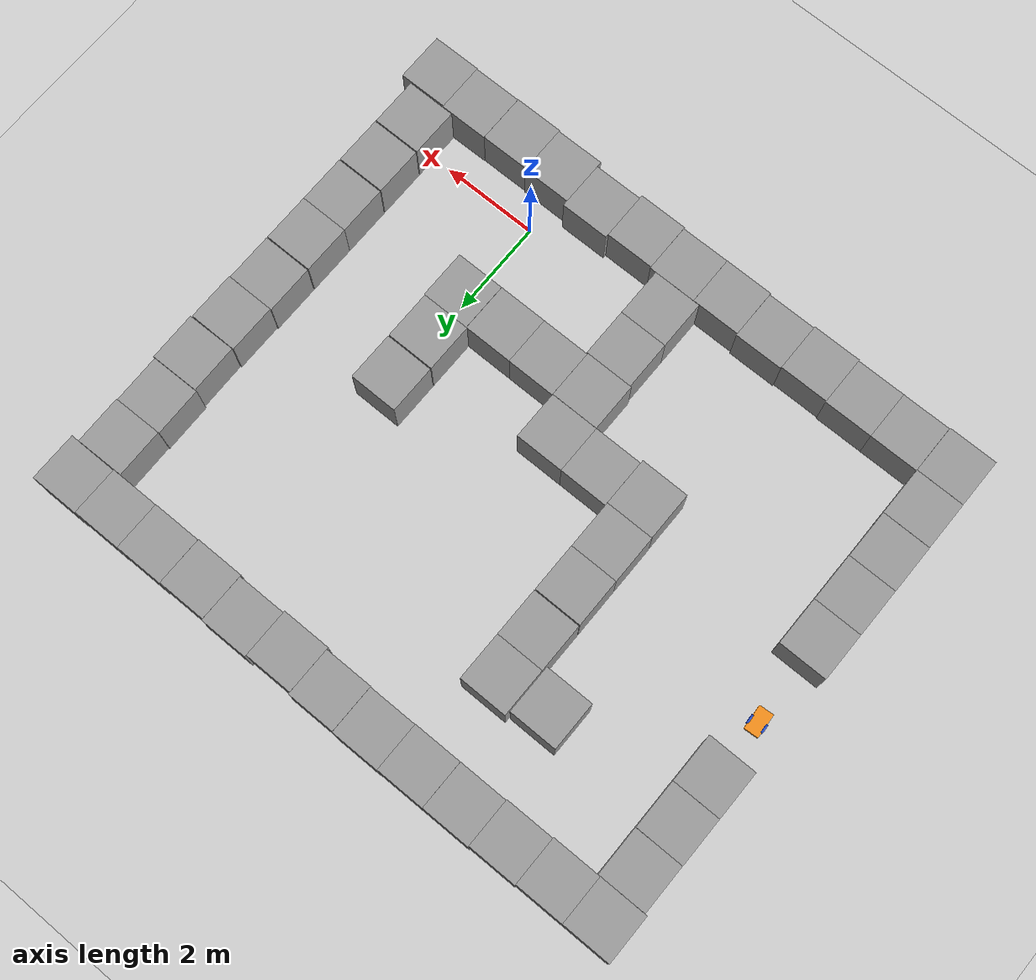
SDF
<sdf version="1.6">
 <world name="default">
  <light name="sun" type="directional">
   <pose>0 0 10 0 -0 0</pose>
   <diffuse>0.8 0.8 0.8 1</diffuse>
   <specular>0.2 0.2 0.2 1</specular>
   <attenuation>
    <range>1000</range>
    <constant>0.9</constant>
    <linear>0.01</linear>
    <quadratic>0.001</quadratic>
   </attenuation>
   <direction>-0.5 0.1 -0.9</direction>
  </light>
  <model name="ground_plane">
   <static>1</static>
   <link name="link">
    <collision name="collision">
     <geometry><plane><normal>0 0 1</normal><size>100 100</size></plane></geometry>
     <surface>
      <contact><collide_bitmask>65535</collide_bitmask></contact>
      <friction><ode><mu>100</mu><mu2>50</mu2></ode></friction>
     </surface>
    </collision>
    <visual name="visual">
     <cast_shadows>0</cast_shadows>
     <geometry><plane><normal>0 0 1</normal><size>100 100</size></plane></geometry>
     <material>
      <script><uri>file://media/materials/scripts/gazebo.material</uri><name>Gazebo/Grey</name></script>
     </material>
    </visual>
   </link>
  </model>
  <gravity>0 0 -9.8</gravity>
  <magnetic_field>6e-06 2.3e-05 -4.2e-05</magnetic_field>
  <atmosphere type="adiabatic"/>
  <physics name="default_physics" default="0" type="ode">
   <max_step_size>0.001</max_step_size>
   <real_time_factor>1</real_time_factor>
   <real_time_update_rate>1000</real_time_update_rate>
  </physics>
  <scene><ambient>0.4 0.4 0.4 1</ambient><background>0.7 0.7 0.7 1</background><shadows>1</shadows></scene>
  <audio><device>default</device></audio>
  <spherical_coordinates>
   <surface_model>EARTH_WGS84</surface_model>
   <latitude_deg>0</latitude_deg>
   <longitude_deg>0</longitude_deg>
   <elevation>0</elevation>
   <heading_deg>0</heading_deg>
  </spherical_coordinates>
  <model name="unit_box">
   <pose>1.10678 -1.08477 0.499995 0 -1e-05 0.004024</pose>
   <link name="link">
    <inertial>
     <mass>1</mass>
     <inertia>
      <ixx>0.166667</ixx>
      <ixy>0</ixy>
      <ixz>0</ixz>
      <iyy>0.166667</iyy>
      <iyz>0</iyz>
      <izz>0.166667</izz>
     </inertia>
    </inertial>
    <collision name="collision"><geometry><box><size>1 1 1</size></box></geometry></collision>
    <visual name="visual">
     <geometry><box><size>1 1 1</size></box></geometry>
     <material>
      <script><name>Gazebo/Grey</name><uri>file://media/materials/scripts/gazebo.material</uri></script>
     </material>
    </visual>
   </link>
  </model>
  <model name="unit_box_0">
   <pose>2.10785 -1.07184 0.499995 0 1e-05 0.004728</pose>
   <link name="link">
    <inertial>
     <mass>1</mass>
     <inertia>
      <ixx>0.166667</ixx>
      <ixy>0</ixy>
      <ixz>0</ixz>
      <iyy>0.166667</iyy>
      <iyz>0</iyz>
      <izz>0.166667</izz>
     </inertia>
    </inertial>
    <collision name="collision"><geometry><box><size>1 1 1</size></box></geometry></collision>
    <visual name="visual">
     <geometry><box><size>1 1 1</size></box></geometry>
     <material>
      <script><name>Gazebo/Grey</name><uri>file://media/materials/scripts/gazebo.material</uri></script>
     </material>
    </visual>
   </link>
  </model>
  <model name="unit_box_1">
   <pose>3.10792 -1.08272 0.499995 0 1e-05 0.004727</pose>
   <link name="link">
    <inertial>
     <mass>1</mass>
     <inertia>
      <ixx>0.166667</ixx>
      <ixy>0</ixy>
      <ixz>0</ixz>
      <iyy>0.166667</iyy>
      <iyz>0</iyz>
      <izz>0.166667</izz>
     </inertia>
    </inertial>
    <collision name="collision"><geometry><box><size>1 1 1</size></box></geometry></collision>
    <visual name="visual">
     <geometry><box><size>1 1 1</size></box></geometry>
     <material>
      <script><name>Gazebo/Grey</name><uri>file://media/materials/scripts/gazebo.material</uri></script>
     </material>
    </visual>
   </link>
  </model>
  <model name="unit_box_3">
   <pose>-8.89802 -1.03889 0.499995 -0 -1e-05 0.001321</pose>
   <link name="link">
    <inertial>
     <mass>1</mass>
     <inertia>
      <ixx>0.166667</ixx>
      <ixy>0</ixy>
      <ixz>0</ixz>
      <iyy>0.166667</iyy>
      <iyz>0</iyz>
      <izz>0.166667</izz>
     </inertia>
    </inertial>
    <collision name="collision"><geometry><box><size>1 1 1</size></box></geometry></collision>
    <visual name="visual">
     <geometry><box><size>1 1 1</size></box></geometry>
     <material>
      <script><name>Gazebo/Grey</name><uri>file://media/materials/scripts/gazebo.material</uri></script>
     </material>
    </visual>
   </link>
  </model>
  <model name="unit_box_2">
   <pose>-7.89581 -1.01548 0.499995 -0 -1e-05 0.00491</pose>
   <link name="link">
    <inertial>
     <mass>1</mass>
     <inertia>
      <ixx>0.166667</ixx>
      <ixy>0</ixy>
      <ixz>0</ixz>
      <iyy>0.166667</iyy>
      <iyz>0</iyz>
      <izz>0.166667</izz>
     </inertia>
    </inertial>
    <collision name="collision"><geometry><box><size>1 1 1</size></box></geometry></collision>
    <visual name="visual">
     <geometry><box><size>1 1 1</size></box></geometry>
     <material>
      <script><name>Gazebo/Grey</name><uri>file://media/materials/scripts/gazebo.material</uri></script>
     </material>
    </visual>
   </link>
  </model>
  <model name="unit_box_4">
   <pose>-6.89569 -1.01175 0.499995 0 -1e-05 0.005141</pose>
   <link name="link">
    <inertial>
     <mass>1</mass>
     <inertia>
      <ixx>0.166667</ixx>
      <ixy>0</ixy>
      <ixz>0</ixz>
      <iyy>0.166667</iyy>
      <iyz>0</iyz>
      <izz>0.166667</izz>
     </inertia>
    </inertial>
    <collision name="collision"><geometry><box><size>1 1 1</size></box></geometry></collision>
    <visual name="visual">
     <geometry><box><size>1 1 1</size></box></geometry>
     <material>
      <script><name>Gazebo/Grey</name><uri>file://media/materials/scripts/gazebo.material</uri></script>
     </material>
    </visual>
   </link>
  </model>
  <model name="unit_box_5">
   <pose>-5.89553 -1.02818 0.499995 0 -1e-05 0.005232</pose>
   <link name="link">
    <inertial>
     <mass>1</mass>
     <inertia>
      <ixx>0.166667</ixx>
      <ixy>0</ixy>
      <ixz>0</ixz>
      <iyy>0.166667</iyy>
      <iyz>0</iyz>
      <izz>0.166667</izz>
     </inertia>
    </inertial>
    <collision name="collision"><geometry><box><size>1 1 1</size></box></geometry></collision>
    <visual name="visual">
     <geometry><box><size>1 1 1</size></box></geometry>
     <material>
      <script><name>Gazebo/Grey</name><uri>file://media/materials/scripts/gazebo.material</uri></script>
     </material>
    </visual>
   </link>
  </model>
  <model name="unit_box_6">
   <pose>-4.89558 -0.996285 0.499995 0 1e-05 0.005085</pose>
   <link name="link">
    <inertial>
     <mass>1</mass>
     <inertia>
      <ixx>0.166667</ixx>
      <ixy>0</ixy>
      <ixz>0</ixz>
      <iyy>0.166667</iyy>
      <iyz>0</iyz>
      <izz>0.166667</izz>
     </inertia>
    </inertial>
    <collision name="collision"><geometry><box><size>1 1 1</size></box></geometry></collision>
    <visual name="visual">
     <geometry><box><size>1 1 1</size></box></geometry>
     <material>
      <script><name>Gazebo/Grey</name><uri>file://media/materials/scripts/gazebo.material</uri></script>
     </material>
    </visual>
   </link>
  </model>
  <model name="unit_box_7">
   <pose>-3.89474 -1.02445 0.499995 0 1e-05 0.003658</pose>
   <link name="link">
    <inertial>
     <mass>1</mass>
     <inertia>
      <ixx>0.166667</ixx>
      <ixy>0</ixy>
      <ixz>0</ixz>
      <iyy>0.166667</iyy>
      <iyz>0</iyz>
      <izz>0.166667</izz>
     </inertia>
    </inertial>
    <collision name="collision"><geometry><box><size>1 1 1</size></box></geometry></collision>
    <visual name="visual">
     <geometry><box><size>1 1 1</size></box></geometry>
     <material>
      <script><name>Gazebo/Grey</name><uri>file://media/materials/scripts/gazebo.material</uri></script>
     </material>
    </visual>
   </link>
  </model>
  <model name="unit_box_8">
   <pose>-2.89445 -1.01761 0.499995 0 -1e-05 0.003064</pose>
   <link name="link">
    <inertial>
     <mass>1</mass>
     <inertia>
      <ixx>0.166667</ixx>
      <ixy>0</ixy>
      <ixz>0</ixz>
      <iyy>0.166667</iyy>
      <iyz>0</iyz>
      <izz>0.166667</izz>
     </inertia>
    </inertial>
    <collision name="collision"><geometry><box><size>1 1 1</size></box></geometry></collision>
    <visual name="visual">
     <geometry><box><size>1 1 1</size></box></geometry>
     <material>
      <script><name>Gazebo/Grey</name><uri>file://media/materials/scripts/gazebo.material</uri></script>
     </material>
    </visual>
   </link>
  </model>
  <model name="unit_box_9">
   <pose>-1.89368 -1.03877 0.499995 1e-05 -0 0.004444</pose>
   <link name="link">
    <inertial>
     <mass>1</mass>
     <inertia>
      <ixx>0.166667</ixx>
      <ixy>0</ixy>
      <ixz>0</ixz>
      <iyy>0.166667</iyy>
      <iyz>0</iyz>
      <izz>0.166667</izz>
     </inertia>
    </inertial>
    <collision name="collision"><geometry><box><size>1 1 1</size></box></geometry></collision>
    <visual name="visual">
     <geometry><box><size>1 1 1</size></box></geometry>
     <material>
      <script><name>Gazebo/Grey</name><uri>file://media/materials/scripts/gazebo.material</uri></script>
     </material>
    </visual>
   </link>
  </model>
  <model name="unit_box_10">
   <pose>-0.893973 -0.968694 0.499995 -1e-05 -0 0.004441</pose>
   <link name="link">
    <inertial>
     <mass>1</mass>
     <inertia>
      <ixx>0.166667</ixx>
      <ixy>0</ixy>
      <ixz>0</ixz>
      <iyy>0.166667</iyy>
      <iyz>0</iyz>
      <izz>0.166667</izz>
     </inertia>
    </inertial>
    <collision name="collision"><geometry><box><size>1 1 1</size></box></geometry></collision>
    <visual name="visual">
     <geometry><box><size>1 1 1</size></box></geometry>
     <material>
      <script><name>Gazebo/Grey</name><uri>file://media/materials/scripts/gazebo.material</uri></script>
     </material>
    </visual>
   </link>
  </model>
  <model name="unit_box_11">
   <pose>0.106488 -1.06878 0.499995 -1e-05 0 0.004438</pose>
   <link name="link">
    <inertial>
     <mass>1</mass>
     <inertia>
      <ixx>0.166667</ixx>
      <ixy>0</ixy>
      <ixz>0</ixz>
      <iyy>0.166667</iyy>
      <iyz>0</iyz>
      <izz>0.166667</izz>
     </inertia>
    </inertial>
    <collision name="collision"><geometry><box><size>1 1 1</size></box></geometry></collision>
    <visual name="visual">
     <geometry><box><size>1 1 1</size></box></geometry>
     <material>
      <script><name>Gazebo/Grey</name><uri>file://media/materials/scripts/gazebo.material</uri></script>
     </material>
    </visual>
   </link>
  </model>
  <model name="unit_box_12">
   <pose>-8.90138 -0.038357 0.499995 0 1e-05 0.000629</pose>
   <link name="link">
    <inertial>
     <mass>1</mass>
     <inertia>
      <ixx>0.166667</ixx>
      <ixy>0</ixy>
      <ixz>0</ixz>
      <iyy>0.166667</iyy>
      <iyz>0</iyz>
      <izz>0.166667</izz>
     </inertia>
    </inertial>
    <collision name="collision"><geometry><box><size>1 1 1</size></box></geometry></collision>
    <visual name="visual">
     <geometry><box><size>1 1 1</size></box></geometry>
     <material>
      <script><name>Gazebo/Grey</name><uri>file://media/materials/scripts/gazebo.material</uri></script>
     </material>
    </visual>
   </link>
  </model>
  <model name="unit_box_13">
   <pose>-3.0327 -0.016828 0.499995 -0 1e-05 0.00068</pose>
   <link name="link">
    <inertial>
     <mass>1</mass>
     <inertia>
      <ixx>0.166667</ixx>
      <ixy>0</ixy>
      <ixz>0</ixz>
      <iyy>0.166667</iyy>
      <iyz>0</iyz>
      <izz>0.166667</izz>
     </inertia>
    </inertial>
    <collision name="collision"><geometry><box><size>1 1 1</size></box></geometry></collision>
    <visual name="visual">
     <geometry><box><size>1 1 1</size></box></geometry>
     <material>
      <script><name>Gazebo/Grey</name><uri>file://media/materials/scripts/gazebo.material</uri></script>
     </material>
    </visual>
   </link>
  </model>
  <model name="unit_box_14">
   <pose>-3.03345 0.983181 0.499995 0 -1e-05 0.00068</pose>
   <link name="link">
    <inertial>
     <mass>1</mass>
     <inertia>
      <ixx>0.166667</ixx>
      <ixy>0</ixy>
      <ixz>0</ixz>
      <iyy>0.166667</iyy>
      <iyz>0</iyz>
      <izz>0.166667</izz>
     </inertia>
    </inertial>
    <collision name="collision"><geometry><box><size>1 1 1</size></box></geometry></collision>
    <visual name="visual">
     <geometry><box><size>1 1 1</size></box></geometry>
     <material>
      <script><name>Gazebo/Grey</name><uri>file://media/materials/scripts/gazebo.material</uri></script>
     </material>
    </visual>
   </link>
  </model>
  <model name="unit_box_15">
   <pose>-3.06105 1.98323 0.499995 -1e-05 -0 0.000619</pose>
   <link name="link">
    <inertial>
     <mass>1</mass>
     <inertia>
      <ixx>0.166667</ixx>
      <ixy>0</ixy>
      <ixz>0</ixz>
      <iyy>0.166667</iyy>
      <iyz>0</iyz>
      <izz>0.166667</izz>
     </inertia>
    </inertial>
    <collision name="collision"><geometry><box><size>1 1 1</size></box></geometry></collision>
    <visual name="visual">
     <geometry><box><size>1 1 1</size></box></geometry>
     <material>
      <script><name>Gazebo/Grey</name><uri>file://media/materials/scripts/gazebo.material</uri></script>
     </material>
    </visual>
   </link>
  </model>
  <model name="unit_box_16">
   <pose>-3.06608 2.98454 0.499995 -0 1e-05 0.001357</pose>
   <link name="link">
    <inertial>
     <mass>1</mass>
     <inertia>
      <ixx>0.166667</ixx>
      <ixy>0</ixy>
      <ixz>0</ixz>
      <iyy>0.166667</iyy>
      <iyz>0</iyz>
      <izz>0.166667</izz>
     </inertia>
    </inertial>
    <collision name="collision"><geometry><box><size>1 1 1</size></box></geometry></collision>
    <visual name="visual">
     <geometry><box><size>1 1 1</size></box></geometry>
     <material>
      <script><name>Gazebo/Grey</name><uri>file://media/materials/scripts/gazebo.material</uri></script>
     </material>
    </visual>
   </link>
  </model>
  <model name="unit_box_17">
   <pose>-4.0661 2.98144 0.499995 -0 -1e-05 0.00135</pose>
   <link name="link">
    <inertial>
     <mass>1</mass>
     <inertia>
      <ixx>0.166667</ixx>
      <ixy>0</ixy>
      <ixz>0</ixz>
      <iyy>0.166667</iyy>
      <iyz>0</iyz>
      <izz>0.166667</izz>
     </inertia>
    </inertial>
    <collision name="collision"><geometry><box><size>1 1 1</size></box></geometry></collision>
    <visual name="visual">
     <geometry><box><size>1 1 1</size></box></geometry>
     <material>
      <script><name>Gazebo/Grey</name><uri>file://media/materials/scripts/gazebo.material</uri></script>
     </material>
    </visual>
   </link>
  </model>
  <model name="unit_box_18">
   <pose>-5.06625 2.91682 0.499995 0 1e-05 0.000856</pose>
   <link name="link">
    <inertial>
     <mass>1</mass>
     <inertia>
      <ixx>0.166667</ixx>
      <ixy>0</ixy>
      <ixz>0</ixz>
      <iyy>0.166667</iyy>
      <iyz>0</iyz>
      <izz>0.166667</izz>
     </inertia>
    </inertial>
    <collision name="collision"><geometry><box><size>1 1 1</size></box></geometry></collision>
    <visual name="visual">
     <geometry><box><size>1 1 1</size></box></geometry>
     <material>
      <script><name>Gazebo/Grey</name><uri>file://media/materials/scripts/gazebo.material</uri></script>
     </material>
    </visual>
   </link>
  </model>
  <model name="unit_box_19">
   <pose>-5.07228 3.91687 0.499995 -0 -1e-05 0.000751</pose>
   <link name="link">
    <inertial>
     <mass>1</mass>
     <inertia>
      <ixx>0.166667</ixx>
      <ixy>0</ixy>
      <ixz>0</ixz>
      <iyy>0.166667</iyy>
      <iyz>0</iyz>
      <izz>0.166667</izz>
     </inertia>
    </inertial>
    <collision name="collision"><geometry><box><size>1 1 1</size></box></geometry></collision>
    <visual name="visual">
     <geometry><box><size>1 1 1</size></box></geometry>
     <material>
      <script><name>Gazebo/Grey</name><uri>file://media/materials/scripts/gazebo.material</uri></script>
     </material>
    </visual>
   </link>
  </model>
  <model name="unit_box_20">
   <pose>-5.07205 4.91687 0.5 0 -0 0.000749</pose>
   <link name="link">
    <inertial>
     <mass>1</mass>
     <inertia>
      <ixx>0.166667</ixx>
      <ixy>0</ixy>
      <ixz>0</ixz>
      <iyy>0.166667</iyy>
      <iyz>0</iyz>
      <izz>0.166667</izz>
     </inertia>
    </inertial>
    <collision name="collision"><geometry><box><size>1 1 1</size></box></geometry></collision>
    <visual name="visual">
     <geometry><box><size>1 1 1</size></box></geometry>
     <material>
      <script><name>Gazebo/Grey</name><uri>file://media/materials/scripts/gazebo.material</uri></script>
     </material>
    </visual>
   </link>
  </model>
  <model name="unit_box_21">
   <pose>-5.07207 5.93515 0.499995 0 1e-05 -1.3e-05</pose>
   <link name="link">
    <inertial>
     <mass>1</mass>
     <inertia>
      <ixx>0.166667</ixx>
      <ixy>0</ixy>
      <ixz>0</ixz>
      <iyy>0.166667</iyy>
      <iyz>0</iyz>
      <izz>0.166667</izz>
     </inertia>
    </inertial>
    <collision name="collision"><geometry><box><size>1 1 1</size></box></geometry></collision>
    <visual name="visual">
     <geometry><box><size>1 1 1</size></box></geometry>
     <material>
      <script><name>Gazebo/Grey</name><uri>file://media/materials/scripts/gazebo.material</uri></script>
     </material>
    </visual>
   </link>
  </model>
  <model name="unit_box_22">
   <pose>-5.07205 6.93517 0.499995 0 1e-05 -1.3e-05</pose>
   <link name="link">
    <inertial>
     <mass>1</mass>
     <inertia>
      <ixx>0.166667</ixx>
      <ixy>0</ixy>
      <ixz>0</ixz>
      <iyy>0.166667</iyy>
      <iyz>0</iyz>
      <izz>0.166667</izz>
     </inertia>
    </inertial>
    <collision name="collision"><geometry><box><size>1 1 1</size></box></geometry></collision>
    <visual name="visual">
     <geometry><box><size>1 1 1</size></box></geometry>
     <material>
      <script><name>Gazebo/Grey</name><uri>file://media/materials/scripts/gazebo.material</uri></script>
     </material>
    </visual>
   </link>
  </model>
  <model name="unit_box_23">
   <pose>-6.09176 6.83056 0.499995 -1e-05 -0 5e-06</pose>
   <link name="link">
    <inertial>
     <mass>1</mass>
     <inertia>
      <ixx>0.166667</ixx>
      <ixy>0</ixy>
      <ixz>0</ixz>
      <iyy>0.166667</iyy>
      <iyz>0</iyz>
      <izz>0.166667</izz>
     </inertia>
    </inertial>
    <collision name="collision"><geometry><box><size>1 1 1</size></box></geometry></collision>
    <visual name="visual">
     <geometry><box><size>1 1 1</size></box></geometry>
     <material>
      <script><name>Gazebo/Grey</name><uri>file://media/materials/scripts/gazebo.material</uri></script>
     </material>
    </visual>
   </link>
  </model>
  <model name="unit_box_24">
   <pose>-8.90415 0.961786 0.499995 0 1e-05 0.000471</pose>
   <link name="link">
    <inertial>
     <mass>1</mass>
     <inertia>
      <ixx>0.166667</ixx>
      <ixy>0</ixy>
      <ixz>0</ixz>
      <iyy>0.166667</iyy>
      <iyz>0</iyz>
      <izz>0.166667</izz>
     </inertia>
    </inertial>
    <collision name="collision"><geometry><box><size>1 1 1</size></box></geometry></collision>
    <visual name="visual">
     <geometry><box><size>1 1 1</size></box></geometry>
     <material>
      <script><name>Gazebo/Grey</name><uri>file://media/materials/scripts/gazebo.material</uri></script>
     </material>
    </visual>
   </link>
  </model>
  <model name="unit_box_25">
   <pose>-8.90245 1.96185 0.499995 0 1e-05 0.000464</pose>
   <link name="link">
    <inertial>
     <mass>1</mass>
     <inertia>
      <ixx>0.166667</ixx>
      <ixy>0</ixy>
      <ixz>0</ixz>
      <iyy>0.166667</iyy>
      <iyz>0</iyz>
      <izz>0.166667</izz>
     </inertia>
    </inertial>
    <collision name="collision"><geometry><box><size>1 1 1</size></box></geometry></collision>
    <visual name="visual">
     <geometry><box><size>1 1 1</size></box></geometry>
     <material>
      <script><name>Gazebo/Grey</name><uri>file://media/materials/scripts/gazebo.material</uri></script>
     </material>
    </visual>
   </link>
  </model>
  <model name="unit_box_26">
   <pose>-8.90071 2.96189 0.499995 0 1e-05 0.000391</pose>
   <link name="link">
    <inertial>
     <mass>1</mass>
     <inertia>
      <ixx>0.166667</ixx>
      <ixy>0</ixy>
      <ixz>0</ixz>
      <iyy>0.166667</iyy>
      <iyz>0</iyz>
      <izz>0.166667</izz>
     </inertia>
    </inertial>
    <collision name="collision"><geometry><box><size>1 1 1</size></box></geometry></collision>
    <visual name="visual">
     <geometry><box><size>1 1 1</size></box></geometry>
     <material>
      <script><name>Gazebo/Grey</name><uri>file://media/materials/scripts/gazebo.material</uri></script>
     </material>
    </visual>
   </link>
  </model>
  <model name="unit_box_28">
   <pose>-8.94721 5.9694 0.499995 -1e-05 -0 3.6e-05</pose>
   <link name="link">
    <inertial>
     <mass>1</mass>
     <inertia>
      <ixx>0.166667</ixx>
      <ixy>0</ixy>
      <ixz>0</ixz>
      <iyy>0.166667</iyy>
      <iyz>0</iyz>
      <izz>0.166667</izz>
     </inertia>
    </inertial>
    <collision name="collision"><geometry><box><size>1 1 1</size></box></geometry></collision>
    <visual name="visual">
     <geometry><box><size>1 1 1</size></box></geometry>
     <material>
      <script><name>Gazebo/Grey</name><uri>file://media/materials/scripts/gazebo.material</uri></script>
     </material>
    </visual>
   </link>
  </model>
  <model name="unit_box_29">
   <pose>-8.94594 6.96968 0.5 0 -0 0.000603</pose>
   <link name="link">
    <inertial>
     <mass>1</mass>
     <inertia>
      <ixx>0.166667</ixx>
      <ixy>0</ixy>
      <ixz>0</ixz>
      <iyy>0.166667</iyy>
      <iyz>0</iyz>
      <izz>0.166667</izz>
     </inertia>
    </inertial>
    <collision name="collision"><geometry><box><size>1 1 1</size></box></geometry></collision>
    <visual name="visual">
     <geometry><box><size>1 1 1</size></box></geometry>
     <material>
      <script><name>Gazebo/Grey</name><uri>file://media/materials/scripts/gazebo.material</uri></script>
     </material>
    </visual>
   </link>
  </model>
  <model name="unit_box_30">
   <pose>-8.94361 7.97004 0.499995 0 1e-05 0.001294</pose>
   <link name="link">
    <inertial>
     <mass>1</mass>
     <inertia>
      <ixx>0.166667</ixx>
      <ixy>0</ixy>
      <ixz>0</ixz>
      <iyy>0.166667</iyy>
      <iyz>0</iyz>
      <izz>0.166667</izz>
     </inertia>
    </inertial>
    <collision name="collision"><geometry><box><size>1 1 1</size></box></geometry></collision>
    <visual name="visual">
     <geometry><box><size>1 1 1</size></box></geometry>
     <material>
      <script><name>Gazebo/Grey</name><uri>file://media/materials/scripts/gazebo.material</uri></script>
     </material>
    </visual>
   </link>
  </model>
  <model name="unit_box_31">
   <pose>-8.99385 8.97042 0.499995 0 1e-05 0.000601</pose>
   <link name="link">
    <inertial>
     <mass>1</mass>
     <inertia>
      <ixx>0.166667</ixx>
      <ixy>0</ixy>
      <ixz>0</ixz>
      <iyy>0.166667</iyy>
      <iyz>0</iyz>
      <izz>0.166667</izz>
     </inertia>
    </inertial>
    <collision name="collision"><geometry><box><size>1 1 1</size></box></geometry></collision>
    <visual name="visual">
     <geometry><box><size>1 1 1</size></box></geometry>
     <material>
      <script><name>Gazebo/Grey</name><uri>file://media/materials/scripts/gazebo.material</uri></script>
     </material>
    </visual>
   </link>
  </model>
  <model name="unit_box_32">
   <pose>-7.99386 8.97362 0.499995 0 -1e-05 0.000602</pose>
   <link name="link">
    <inertial>
     <mass>1</mass>
     <inertia>
      <ixx>0.166667</ixx>
      <ixy>0</ixy>
      <ixz>0</ixz>
      <iyy>0.166667</iyy>
      <iyz>0</iyz>
      <izz>0.166667</izz>
     </inertia>
    </inertial>
    <collision name="collision"><geometry><box><size>1 1 1</size></box></geometry></collision>
    <visual name="visual">
     <geometry><box><size>1 1 1</size></box></geometry>
     <material>
      <script><name>Gazebo/Grey</name><uri>file://media/materials/scripts/gazebo.material</uri></script>
     </material>
    </visual>
   </link>
  </model>
  <model name="unit_box_33">
   <pose>-6.99386 8.99262 0.499995 -1e-05 0 0.000624</pose>
   <link name="link">
    <inertial>
     <mass>1</mass>
     <inertia>
      <ixx>0.166667</ixx>
      <ixy>0</ixy>
      <ixz>0</ixz>
      <iyy>0.166667</iyy>
      <iyz>0</iyz>
      <izz>0.166667</izz>
     </inertia>
    </inertial>
    <collision name="collision"><geometry><box><size>1 1 1</size></box></geometry></collision>
    <visual name="visual">
     <geometry><box><size>1 1 1</size></box></geometry>
     <material>
      <script><name>Gazebo/Grey</name><uri>file://media/materials/scripts/gazebo.material</uri></script>
     </material>
    </visual>
   </link>
  </model>
  <model name="unit_box_34">
   <pose>-5.99386 9.01181 0.499995 -1e-05 -0 0.000632</pose>
   <link name="link">
    <inertial>
     <mass>1</mass>
     <inertia>
      <ixx>0.166667</ixx>
      <ixy>0</ixy>
      <ixz>0</ixz>
      <iyy>0.166667</iyy>
      <iyz>0</iyz>
      <izz>0.166667</izz>
     </inertia>
    </inertial>
    <collision name="collision"><geometry><box><size>1 1 1</size></box></geometry></collision>
    <visual name="visual">
     <geometry><box><size>1 1 1</size></box></geometry>
     <material>
      <script><name>Gazebo/Grey</name><uri>file://media/materials/scripts/gazebo.material</uri></script>
     </material>
    </visual>
   </link>
  </model>
  <model name="unit_box_35">
   <pose>-4.99319 9.01456 0.499995 0 -1e-05 0.001935</pose>
   <link name="link">
    <inertial>
     <mass>1</mass>
     <inertia>
      <ixx>0.166667</ixx>
      <ixy>0</ixy>
      <ixz>0</ixz>
      <iyy>0.166667</iyy>
      <iyz>0</iyz>
      <izz>0.166667</izz>
     </inertia>
    </inertial>
    <collision name="collision"><geometry><box><size>1 1 1</size></box></geometry></collision>
    <visual name="visual">
     <geometry><box><size>1 1 1</size></box></geometry>
     <material>
      <script><name>Gazebo/Grey</name><uri>file://media/materials/scripts/gazebo.material</uri></script>
     </material>
    </visual>
   </link>
  </model>
  <model name="unit_box_36">
   <pose>-3.99317 9.02367 0.499995 0 -1e-05 0.001932</pose>
   <link name="link">
    <inertial>
     <mass>1</mass>
     <inertia>
      <ixx>0.166667</ixx>
      <ixy>0</ixy>
      <ixz>0</ixz>
      <iyy>0.166667</iyy>
      <iyz>0</iyz>
      <izz>0.166667</izz>
     </inertia>
    </inertial>
    <collision name="collision"><geometry><box><size>1 1 1</size></box></geometry></collision>
    <visual name="visual">
     <geometry><box><size>1 1 1</size></box></geometry>
     <material>
      <script><name>Gazebo/Grey</name><uri>file://media/materials/scripts/gazebo.material</uri></script>
     </material>
    </visual>
   </link>
  </model>
  <model name="unit_box_37">
   <pose>-2.99141 9.0131 0.499995 0 1e-05 0.001727</pose>
   <link name="link">
    <inertial>
     <mass>1</mass>
     <inertia>
      <ixx>0.166667</ixx>
      <ixy>0</ixy>
      <ixz>0</ixz>
      <iyy>0.166667</iyy>
      <iyz>0</iyz>
      <izz>0.166667</izz>
     </inertia>
    </inertial>
    <collision name="collision"><geometry><box><size>1 1 1</size></box></geometry></collision>
    <visual name="visual">
     <geometry><box><size>1 1 1</size></box></geometry>
     <material>
      <script><name>Gazebo/Grey</name><uri>file://media/materials/scripts/gazebo.material</uri></script>
     </material>
    </visual>
   </link>
  </model>
  <model name="unit_box_38">
   <pose>-1.99099 8.97543 0.499995 -1e-05 -0 0.001757</pose>
   <link name="link">
    <inertial>
     <mass>1</mass>
     <inertia>
      <ixx>0.166667</ixx>
      <ixy>0</ixy>
      <ixz>0</ixz>
      <iyy>0.166667</iyy>
      <iyz>0</iyz>
      <izz>0.166667</izz>
     </inertia>
    </inertial>
    <collision name="collision"><geometry><box><size>1 1 1</size></box></geometry></collision>
    <visual name="visual">
     <geometry><box><size>1 1 1</size></box></geometry>
     <material>
      <script><name>Gazebo/Grey</name><uri>file://media/materials/scripts/gazebo.material</uri></script>
     </material>
    </visual>
   </link>
  </model>
  <model name="unit_box_39">
   <pose>2.87684 -0.057194 0.499995 -1e-05 -0 5e-06</pose>
   <link name="link">
    <inertial>
     <mass>1</mass>
     <inertia>
      <ixx>0.166667</ixx>
      <ixy>0</ixy>
      <ixz>0</ixz>
      <iyy>0.166667</iyy>
      <iyz>0</iyz>
      <izz>0.166667</izz>
     </inertia>
    </inertial>
    <collision name="collision"><geometry><box><size>1 1 1</size></box></geometry></collision>
    <visual name="visual">
     <geometry><box><size>1 1 1</size></box></geometry>
     <material>
      <script><name>Gazebo/Grey</name><uri>file://media/materials/scripts/gazebo.material</uri></script>
     </material>
    </visual>
   </link>
  </model>
  <model name="unit_box_40">
   <pose>2.87687 0.96243 0.499995 0 1e-05 5e-06</pose>
   <link name="link">
    <inertial>
     <mass>1</mass>
     <inertia>
      <ixx>0.166667</ixx>
      <ixy>0</ixy>
      <ixz>0</ixz>
      <iyy>0.166667</iyy>
      <iyz>0</iyz>
      <izz>0.166667</izz>
     </inertia>
    </inertial>
    <collision name="collision"><geometry><box><size>1 1 1</size></box></geometry></collision>
    <visual name="visual">
     <geometry><box><size>1 1 1</size></box></geometry>
     <material>
      <script><name>Gazebo/Grey</name><uri>file://media/materials/scripts/gazebo.material</uri></script>
     </material>
    </visual>
   </link>
  </model>
  <model name="unit_box_41">
   <pose>2.87685 1.9815 0.499995 1e-05 -0 0</pose>
   <link name="link">
    <inertial>
     <mass>1</mass>
     <inertia>
      <ixx>0.166667</ixx>
      <ixy>0</ixy>
      <ixz>0</ixz>
      <iyy>0.166667</iyy>
      <iyz>0</iyz>
      <izz>0.166667</izz>
     </inertia>
    </inertial>
    <collision name="collision"><geometry><box><size>1 1 1</size></box></geometry></collision>
    <visual name="visual">
     <geometry><box><size>1 1 1</size></box></geometry>
     <material>
      <script><name>Gazebo/Grey</name><uri>file://media/materials/scripts/gazebo.material</uri></script>
     </material>
    </visual>
   </link>
  </model>
  <model name="unit_box_42">
   <pose>-2.06082 2.00246 0.499995 0 1e-05 0.000347</pose>
   <link name="link">
    <inertial>
     <mass>1</mass>
     <inertia>
      <ixx>0.166667</ixx>
      <ixy>0</ixy>
      <ixz>0</ixz>
      <iyy>0.166667</iyy>
      <iyz>0</iyz>
      <izz>0.166667</izz>
     </inertia>
    </inertial>
    <collision name="collision"><geometry><box><size>1 1 1</size></box></geometry></collision>
    <visual name="visual">
     <geometry><box><size>1 1 1</size></box></geometry>
     <material>
      <script><name>Gazebo/Grey</name><uri>file://media/materials/scripts/gazebo.material</uri></script>
     </material>
    </visual>
   </link>
  </model>
  <model name="unit_box_43">
   <pose>-1.06076 2.00226 0.499995 0 1e-05 0.000231</pose>
   <link name="link">
    <inertial>
     <mass>1</mass>
     <inertia>
      <ixx>0.166667</ixx>
      <ixy>0</ixy>
      <ixz>0</ixz>
      <iyy>0.166667</iyy>
      <iyz>0</iyz>
      <izz>0.166667</izz>
     </inertia>
    </inertial>
    <collision name="collision"><geometry><box><size>1 1 1</size></box></geometry></collision>
    <visual name="visual">
     <geometry><box><size>1 1 1</size></box></geometry>
     <material>
      <script><name>Gazebo/Grey</name><uri>file://media/materials/scripts/gazebo.material</uri></script>
     </material>
    </visual>
   </link>
  </model>
  <model name="unit_box_44">
   <pose>-0.057319 2.00233 0.499995 0 1e-05 -5.9e-05</pose>
   <link name="link">
    <inertial>
     <mass>1</mass>
     <inertia>
      <ixx>0.166667</ixx>
      <ixy>0</ixy>
      <ixz>0</ixz>
      <iyy>0.166667</iyy>
      <iyz>0</iyz>
      <izz>0.166667</izz>
     </inertia>
    </inertial>
    <collision name="collision"><geometry><box><size>1 1 1</size></box></geometry></collision>
    <visual name="visual">
     <geometry><box><size>1 1 1</size></box></geometry>
     <material>
      <script><name>Gazebo/Grey</name><uri>file://media/materials/scripts/gazebo.material</uri></script>
     </material>
    </visual>
   </link>
  </model>
  <model name="unit_box_45">
   <pose>-0.077995 3.00235 0.499995 -0 1e-05 -6.9e-05</pose>
   <link name="link">
    <inertial>
     <mass>1</mass>
     <inertia>
      <ixx>0.166667</ixx>
      <ixy>0</ixy>
      <ixz>0</ixz>
      <iyy>0.166667</iyy>
      <iyz>0</iyz>
      <izz>0.166667</izz>
     </inertia>
    </inertial>
    <collision name="collision"><geometry><box><size>1 1 1</size></box></geometry></collision>
    <visual name="visual">
     <geometry><box><size>1 1 1</size></box></geometry>
     <material>
      <script><name>Gazebo/Grey</name><uri>file://media/materials/scripts/gazebo.material</uri></script>
     </material>
    </visual>
   </link>
  </model>
  <model name="unit_box_46">
   <pose>-0.078043 4.02133 0.499995 0 1e-05 5e-06</pose>
   <link name="link">
    <inertial>
     <mass>1</mass>
     <inertia>
      <ixx>0.166667</ixx>
      <ixy>0</ixy>
      <ixz>0</ixz>
      <iyy>0.166667</iyy>
      <iyz>0</iyz>
      <izz>0.166667</izz>
     </inertia>
    </inertial>
    <collision name="collision"><geometry><box><size>1 1 1</size></box></geometry></collision>
    <visual name="visual">
     <geometry><box><size>1 1 1</size></box></geometry>
     <material>
      <script><name>Gazebo/Grey</name><uri>file://media/materials/scripts/gazebo.material</uri></script>
     </material>
    </visual>
   </link>
  </model>
  <model name="unit_box_47">
   <pose>2.87685 2.98153 0.499995 -0 1e-05 1e-06</pose>
   <link name="link">
    <inertial>
     <mass>1</mass>
     <inertia>
      <ixx>0.166667</ixx>
      <ixy>0</ixy>
      <ixz>0</ixz>
      <iyy>0.166667</iyy>
      <iyz>0</iyz>
      <izz>0.166667</izz>
     </inertia>
    </inertial>
    <collision name="collision"><geometry><box><size>1 1 1</size></box></geometry></collision>
    <visual name="visual">
     <geometry><box><size>1 1 1</size></box></geometry>
     <material>
      <script><name>Gazebo/Grey</name><uri>file://media/materials/scripts/gazebo.material</uri></script>
     </material>
    </visual>
   </link>
  </model>
  <model name="unit_box_48">
   <pose>2.87701 3.99967 0.499995 9e-06 -0 0.000689</pose>
   <link name="link">
    <inertial>
     <mass>1</mass>
     <inertia>
      <ixx>0.166667</ixx>
      <ixy>0</ixy>
      <ixz>0</ixz>
      <iyy>0.166667</iyy>
      <iyz>0</iyz>
      <izz>0.166667</izz>
     </inertia>
    </inertial>
    <collision name="collision"><geometry><box><size>1 1 1</size></box></geometry></collision>
    <visual name="visual">
     <geometry><box><size>1 1 1</size></box></geometry>
     <material>
      <script><name>Gazebo/Grey</name><uri>file://media/materials/scripts/gazebo.material</uri></script>
     </material>
    </visual>
   </link>
  </model>
  <model name="unit_box_49">
   <pose>2.89742 4.99982 0.499995 -1e-05 -0 0.000941</pose>
   <link name="link">
    <inertial>
     <mass>1</mass>
     <inertia>
      <ixx>0.166667</ixx>
      <ixy>0</ixy>
      <ixz>0</ixz>
      <iyy>0.166667</iyy>
      <iyz>0</iyz>
      <izz>0.166667</izz>
     </inertia>
    </inertial>
    <collision name="collision"><geometry><box><size>1 1 1</size></box></geometry></collision>
    <visual name="visual">
     <geometry><box><size>1 1 1</size></box></geometry>
     <material>
      <script><name>Gazebo/Grey</name><uri>file://media/materials/scripts/gazebo.material</uri></script>
     </material>
    </visual>
   </link>
  </model>
  <model name="unit_box_50">
   <pose>2.91291 6.01118 0.499995 1e-05 -0 0.014508</pose>
   <link name="link">
    <inertial>
     <mass>1</mass>
     <inertia>
      <ixx>0.166667</ixx>
      <ixy>0</ixy>
      <ixz>0</ixz>
      <iyy>0.166667</iyy>
      <iyz>0</iyz>
      <izz>0.166667</izz>
     </inertia>
    </inertial>
    <collision name="collision"><geometry><box><size>1 1 1</size></box></geometry></collision>
    <visual name="visual">
     <geometry><box><size>1 1 1</size></box></geometry>
     <material>
      <script><name>Gazebo/Grey</name><uri>file://media/materials/scripts/gazebo.material</uri></script>
     </material>
    </visual>
   </link>
  </model>
  <model name="unit_box_51">
   <pose>2.86124 7.01518 0.499995 1e-05 -0 0.01457</pose>
   <link name="link">
    <inertial>
     <mass>1</mass>
     <inertia>
      <ixx>0.166667</ixx>
      <ixy>0</ixy>
      <ixz>0</ixz>
      <iyy>0.166667</iyy>
      <iyz>0</iyz>
      <izz>0.166667</izz>
     </inertia>
    </inertial>
    <collision name="collision"><geometry><box><size>1 1 1</size></box></geometry></collision>
    <visual name="visual">
     <geometry><box><size>1 1 1</size></box></geometry>
     <material>
      <script><name>Gazebo/Grey</name><uri>file://media/materials/scripts/gazebo.material</uri></script>
     </material>
    </visual>
   </link>
  </model>
  <model name="unit_box_52">
   <pose>2.86542 8.0154 0.499995 -0 -1e-05 0.014565</pose>
   <link name="link">
    <inertial>
     <mass>1</mass>
     <inertia>
      <ixx>0.166667</ixx>
      <ixy>0</ixy>
      <ixz>0</ixz>
      <iyy>0.166667</iyy>
      <iyz>0</iyz>
      <izz>0.166667</izz>
     </inertia>
    </inertial>
    <collision name="collision"><geometry><box><size>1 1 1</size></box></geometry></collision>
    <visual name="visual">
     <geometry><box><size>1 1 1</size></box></geometry>
     <material>
      <script><name>Gazebo/Grey</name><uri>file://media/materials/scripts/gazebo.material</uri></script>
     </material>
    </visual>
   </link>
  </model>
  <model name="unit_box_53">
   <pose>3.01046 9.02455 0.5 0 -0 0.003172</pose>
   <link name="link">
    <inertial>
     <mass>1</mass>
     <inertia>
      <ixx>0.166667</ixx>
      <ixy>0</ixy>
      <ixz>0</ixz>
      <iyy>0.166667</iyy>
      <iyz>0</iyz>
      <izz>0.166667</izz>
     </inertia>
    </inertial>
    <collision name="collision"><geometry><box><size>1 1 1</size></box></geometry></collision>
    <visual name="visual">
     <geometry><box><size>1 1 1</size></box></geometry>
     <material>
      <script><name>Gazebo/Grey</name><uri>file://media/materials/scripts/gazebo.material</uri></script>
     </material>
    </visual>
   </link>
  </model>
  <model name="unit_box_54">
   <pose>-0.991038 9.01367 0.5 0 -0 0.001722</pose>
   <link name="link">
    <inertial>
     <mass>1</mass>
     <inertia>
      <ixx>0.166667</ixx>
      <ixy>0</ixy>
      <ixz>0</ixz>
      <iyy>0.166667</iyy>
      <iyz>0</iyz>
      <izz>0.166667</izz>
     </inertia>
    </inertial>
    <collision name="collision"><geometry><box><size>1 1 1</size></box></geometry></collision>
    <visual name="visual">
     <geometry><box><size>1 1 1</size></box></geometry>
     <material>
      <script><name>Gazebo/Grey</name><uri>file://media/materials/scripts/gazebo.material</uri></script>
     </material>
    </visual>
   </link>
  </model>
  <model name="unit_box_55">
   <pose>0.009717 8.98861 0.499995 0 1e-05 0.001753</pose>
   <link name="link">
    <inertial>
     <mass>1</mass>
     <inertia>
      <ixx>0.166667</ixx>
      <ixy>0</ixy>
      <ixz>0</ixz>
      <iyy>0.166667</iyy>
      <iyz>0</iyz>
      <izz>0.166667</izz>
     </inertia>
    </inertial>
    <collision name="collision"><geometry><box><size>1 1 1</size></box></geometry></collision>
    <visual name="visual">
     <geometry><box><size>1 1 1</size></box></geometry>
     <material>
      <script><name>Gazebo/Grey</name><uri>file://media/materials/scripts/gazebo.material</uri></script>
     </material>
    </visual>
   </link>
  </model>
  <model name="unit_box_56">
   <pose>1.01044 9.00173 0.499995 -1e-05 0 0.003215</pose>
   <link name="link">
    <inertial>
     <mass>1</mass>
     <inertia>
      <ixx>0.166667</ixx>
      <ixy>0</ixy>
      <ixz>0</ixz>
      <iyy>0.166667</iyy>
      <iyz>0</iyz>
      <izz>0.166667</izz>
     </inertia>
    </inertial>
    <collision name="collision"><geometry><box><size>1 1 1</size></box></geometry></collision>
    <visual name="visual">
     <geometry><box><size>1 1 1</size></box></geometry>
     <material>
      <script><name>Gazebo/Grey</name><uri>file://media/materials/scripts/gazebo.material</uri></script>
     </material>
    </visual>
   </link>
  </model>
  <model name="unit_box_57">
   <pose>2.01047 9.01025 0.5 0 -0 0.003223</pose>
   <link name="link">
    <inertial>
     <mass>1</mass>
     <inertia>
      <ixx>0.166667</ixx>
      <ixy>0</ixy>
      <ixz>0</ixz>
      <iyy>0.166667</iyy>
      <iyz>0</iyz>
      <izz>0.166667</izz>
     </inertia>
    </inertial>
    <collision name="collision"><geometry><box><size>1 1 1</size></box></geometry></collision>
    <visual name="visual">
     <geometry><box><size>1 1 1</size></box></geometry>
     <material>
      <script><name>Gazebo/Grey</name><uri>file://media/materials/scripts/gazebo.material</uri></script>
     </material>
    </visual>
   </link>
  </model>
  <model name="r2w">
   <link name="link_chassis">
    <inertial>
     <pose>0 0 0.1 0 -0 0</pose>
     <mass>5.00001</mass>
     <inertia>
      <ixx>0.0395427</ixx>
      <ixy>0</ixy>
      <ixz>0</ixz>
      <iyy>0.106209</iyy>
      <iyz>0</iyz>
      <izz>0.106209</izz>
     </inertia>
    </inertial>
    <collision name="link_chassis_fixed_joint_lump__collision_chassis_collision">
     <geometry><box><size>0.5 0.3 0.07</size></box></geometry>
    </collision>
    <collision name="link_chassis_fixed_joint_lump__caster_front_collision_collision_1">
     <pose>0.35 0 -0.05 0 -0 0</pose>
     <geometry><sphere><radius>0.05</radius></sphere></geometry>
    </collision>
    <visual name="link_chassis_visual">
     <geometry><box><size>0.5 0.3 0.07</size></box></geometry>
     <material>
      <script><name>Gazebo/Orange</name><uri>file://media/materials/scripts/gazebo.material</uri></script>
     </material>
    </visual>
    <visual name="link_chassis_fixed_joint_lump__caster_front_visual_visual_1">
     <pose>0.2 0 -0.05 0 -0 0</pose>
     <geometry><sphere><radius>0.05</radius></sphere></geometry>
    </visual>
    <sensor name="head_hokuyo_sensor" type="ray">
     <visualize>1</visualize>
     <update_rate>20</update_rate>
     <ray>
      <scan>
       <horizontal>
        <samples>720</samples>
        <resolution>1</resolution>
        <min_angle>-1.5708</min_angle>
        <max_angle>1.5708</max_angle>
       </horizontal>
       <vertical><samples>1</samples><min_angle>0</min_angle><max_angle>0</max_angle></vertical>
      </scan>
      <range><min>0.1</min><max>10</max><resolution>0.1</resolution></range>
      <noise><type>gaussian</type><mean>0</mean><stddev>0.1</stddev></noise>
     </ray>
     <plugin name="gazebo_ros_head_hokuyo_controller" filename="libgazebo_ros_laser.so">
      <topicName>/scan</topicName>
      <frameName>/laser_link</frameName>
      <robotNamespace>/</robotNamespace>
     </plugin>
     <pose>0 0 0.04 0 -0 0</pose>
    </sensor>
   </link>
   <link name="link_left_wheel">
    <pose>-0.05 -0.15 0 0 -0 0</pose>
    <inertial>
     <pose>0 0 0 -0 1.5707 1.5707</pose>
     <mass>0.2</mass>
     <inertia>
      <ixx>0.000526667</ixx>
      <ixy>0</ixy>
      <ixz>0</ixz>
      <iyy>0.000526667</iyy>
      <iyz>0</iyz>
      <izz>0.001</izz>
     </inertia>
    </inertial>
    <collision name="link_left_wheel_collision_collision">
     <pose>0 0 0 3.14159 1.57079 -1.57089</pose>
     <geometry><cylinder><length>0.04</length><radius>0.1</radius></cylinder></geometry>
    </collision>
    <visual name="link_left_wheel_visual_visual">
     <pose>0 0 0 3.14159 1.57079 -1.57089</pose>
     <geometry><cylinder><length>0.04</length><radius>0.1</radius></cylinder></geometry>
     <material>
      <script><name>Gazebo/Blue</name><uri>file://media/materials/scripts/gazebo.material</uri></script>
     </material>
    </visual>
   </link>
   <joint name="joint_left_wheel" type="revolute">
    <child>link_left_wheel</child>
    <parent>link_chassis</parent>
    <axis>
     <xyz>0 1 0</xyz>
     <limit><lower>-1e+16</lower><upper>1e+16</upper></limit>
     <dynamics><spring_reference>0</spring_reference><spring_stiffness>0</spring_stiffness></dynamics>
     <use_parent_model_frame>1</use_parent_model_frame>
    </axis>
   </joint>
   <link name="link_right_wheel">
    <pose>-0.05 0.15 0 0 -0 0</pose>
    <inertial>
     <pose>0 0 0 -0 1.5707 1.5707</pose>
     <mass>0.2</mass>
     <inertia>
      <ixx>0.000526667</ixx>
      <ixy>0</ixy>
      <ixz>0</ixz>
      <iyy>0.000526667</iyy>
      <iyz>0</iyz>
      <izz>0.001</izz>
     </inertia>
    </inertial>
    <collision name="link_right_wheel_collision_collision">
     <pose>0 0 0 3.14159 1.57079 -1.57089</pose>
     <geometry><cylinder><length>0.04</length><radius>0.1</radius></cylinder></geometry>
    </collision>
    <visual name="link_right_wheel_visual_visual">
     <pose>0 0 0 3.14159 1.57079 -1.57089</pose>
     <geometry><cylinder><length>0.04</length><radius>0.1</radius></cylinder></geometry>
     <material>
      <script><name>Gazebo/Blue</name><uri>file://media/materials/scripts/gazebo.material</uri></script>
     </material>
    </visual>
   </link>
   <joint name="joint_right_wheel" type="revolute">
    <child>link_right_wheel</child>
    <parent>link_chassis</parent>
    <axis>
     <xyz>0 1 0</xyz>
     <limit><lower>-1e+16</lower><upper>1e+16</upper></limit>
     <dynamics><spring_reference>0</spring_reference><spring_stiffness>0</spring_stiffness></dynamics>
     <use_parent_model_frame>1</use_parent_model_frame>
    </axis>
   </joint>
   <static>0</static>
   <plugin name="differential_drive_controller" filename="libgazebo_ros_diff_drive.so">
    <alwaysOn>1</alwaysOn>
    <updateRate>20</updateRate>
    <leftJoint>joint_left_wheel</leftJoint>
    <rightJoint>joint_right_wheel</rightJoint>
    <wheelSeparation>0.3</wheelSeparation>
    <wheelDiameter>0.2</wheelDiameter>
    <torque>0.1</torque>
    <commandTopic>cmd_vel</commandTopic>
    <odometryTopic>odom</odometryTopic>
    <odometryFrame>odom</odometryFrame>
    <robotBaseFrame>link_chassis</robotBaseFrame>
    <robotNamespace>/</robotNamespace>
   </plugin>
   <pose>-8.98161 4.601 0.100001 -1.3e-05 -7e-06 -1.50286</pose>
  </model>
 </world>
</sdf>
